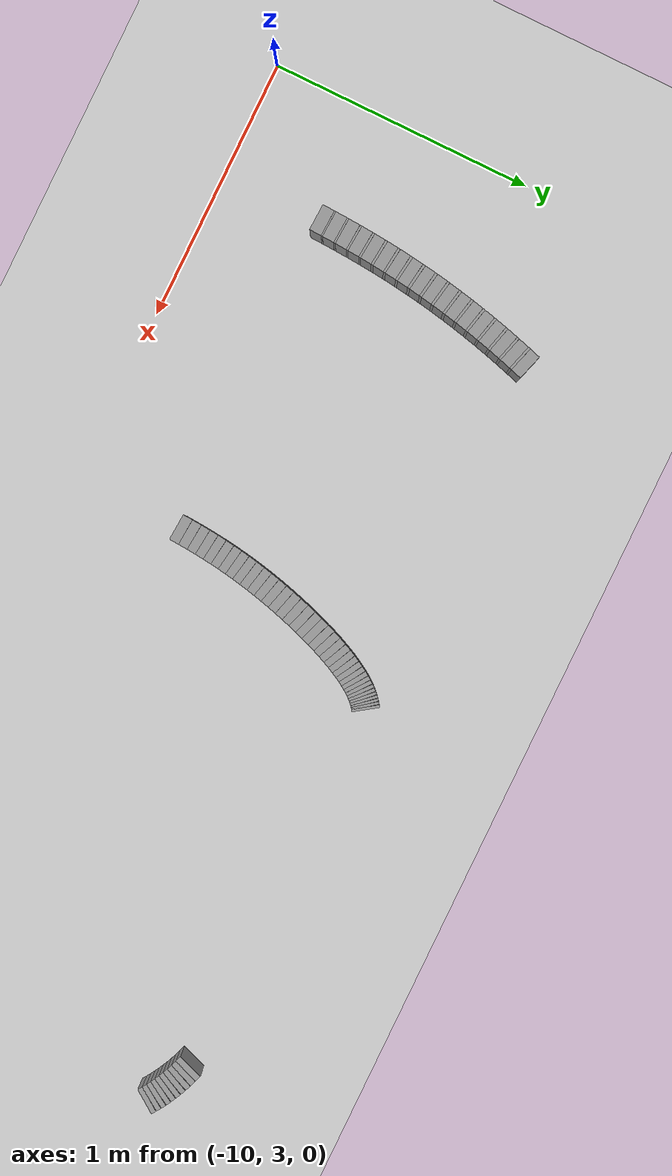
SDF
<sdf version="1.6">
 <world name="default">
  <include><uri>model://ground_plane</uri></include>
  <include><uri>model://sun</uri></include>
  <model name="wall_238_outward">
   <static>true</static>
   <link name="link">
    <collision name="collision">
     <geometry><box><size>0.01884763658179324 0.1 0.45</size></box></geometry>
    </collision>
    <visual name="visual">
     <geometry><box><size>0.01884763658179324 0.1 0.45</size></box></geometry>
     <material>
      <script><uri>file://media/materials/scripts/gazebo.material</uri><name>Gazebo/Gray</name></script>
     </material>
    </visual>
   </link>
   <pose>-6.469579434181382 4.208065182493746 0.225 0 0 2.534879595917903</pose>
  </model>
  <model name="wall_239_outward">
   <static>true</static>
   <link name="link">
    <collision name="collision">
     <geometry><box><size>0.018966233220080148 0.1 0.45</size></box></geometry>
    </collision>
    <visual name="visual">
     <geometry><box><size>0.018966233220080148 0.1 0.45</size></box></geometry>
     <material>
      <script><uri>file://media/materials/scripts/gazebo.material</uri><name>Gazebo/Gray</name></script>
     </material>
    </visual>
   </link>
   <pose>-6.485265855924101 4.218616620293574 0.225 0 0 2.56395053441448</pose>
  </model>
  <model name="wall_240_outward">
   <static>true</static>
   <link name="link">
    <collision name="collision">
     <geometry><box><size>0.01913970998064026 0.1 0.45</size></box></geometry>
    </collision>
    <visual name="visual">
     <geometry><box><size>0.01913970998064026 0.1 0.45</size></box></geometry>
     <material>
      <script><uri>file://media/materials/scripts/gazebo.material</uri><name>Gazebo/Gray</name></script>
     </material>
    </visual>
   </link>
   <pose>-6.501378069665439 4.2287819258829025 0.225 0 0 2.593429267813783</pose>
  </model>
  <model name="wall_241_outward">
   <static>true</static>
   <link name="link">
    <collision name="collision">
     <geometry><box><size>0.019387761232334117 0.1 0.45</size></box></geometry>
    </collision>
    <visual name="visual">
     <geometry><box><size>0.019387761232334117 0.1 0.45</size></box></geometry>
     <material>
      <script><uri>file://media/materials/scripts/gazebo.material</uri><name>Gazebo/Gray</name></script>
     </material>
    </visual>
   </link>
   <pose>-6.517967025851727 4.2385704240365865 0.225 0 0 2.623404136393095</pose>
  </model>
  <model name="wall_242_outward">
   <static>true</static>
   <link name="link">
    <collision name="collision">
     <geometry><box><size>0.019744496036943414 0.1 0.45</size></box></geometry>
    </collision>
    <visual name="visual">
     <geometry><box><size>0.019744496036943414 0.1 0.45</size></box></geometry>
     <material>
      <script><uri>file://media/materials/scripts/gazebo.material</uri><name>Gazebo/Gray</name></script>
     </material>
    </visual>
   </link>
   <pose>-6.535109175027507 4.247998659594815 0.225 0 0 2.653812725578215</pose>
  </model>
  <model name="wall_243_outward">
   <static>true</static>
   <link name="link">
    <collision name="collision">
     <geometry><box><size>0.020238228909970263 0.1 0.45</size></box></geometry>
    </collision>
    <visual name="visual">
     <geometry><box><size>0.020238228909970263 0.1 0.45</size></box></geometry>
     <material>
      <script><uri>file://media/materials/scripts/gazebo.material</uri><name>Gazebo/Gray</name></script>
     </material>
    </visual>
   </link>
   <pose>-6.552910836870186 4.257090451607738 0.225 0 0 2.6846073688030754</pose>
  </model>
  <model name="wall_244_outward">
   <static>true</static>
   <link name="link">
    <collision name="collision">
     <geometry><box><size>0.02090273103443384 0.1 0.45</size></box></geometry>
    </collision>
    <visual name="visual">
     <geometry><box><size>0.02090273103443384 0.1 0.45</size></box></geometry>
     <material>
      <script><uri>file://media/materials/scripts/gazebo.material</uri><name>Gazebo/Gray</name></script>
     </material>
    </visual>
   </link>
   <pose>-6.571508956346371 4.26587412709161 0.225 0 0 2.7156100211326732</pose>
  </model>
  <model name="wall_245_outward">
   <static>true</static>
   <link name="link">
    <collision name="collision">
     <geometry><box><size>0.021761641771831854 0.1 0.45</size></box></geometry>
    </collision>
    <visual name="visual">
     <geometry><box><size>0.021761641771831854 0.1 0.45</size></box></geometry>
     <material>
      <script><uri>file://media/materials/scripts/gazebo.material</uri><name>Gazebo/Gray</name></script>
     </material>
    </visual>
   </link>
   <pose>-6.591069502666788 4.274379282587556 0.225 0 0 2.746646704006796</pose>
  </model>
  <model name="wall_246_outward">
   <static>true</static>
   <link name="link">
    <collision name="collision">
     <geometry><box><size>0.02283679558823693 0.1 0.45</size></box></geometry>
    </collision>
    <visual name="visual">
     <geometry><box><size>0.02283679558823693 0.1 0.45</size></box></geometry>
     <material>
      <script><uri>file://media/materials/scripts/gazebo.material</uri><name>Gazebo/Gray</name></script>
     </material>
    </visual>
   </link>
   <pose>-6.611782346394948 4.2826324903566295 0.225 0 0 2.7774426230982483</pose>
  </model>
  <model name="wall_247_outward">
   <static>true</static>
   <link name="link">
    <collision name="collision">
     <geometry><box><size>0.024110831511824162 0.1 0.45</size></box></geometry>
    </collision>
    <visual name="visual">
     <geometry><box><size>0.024110831511824162 0.1 0.45</size></box></geometry>
     <material>
      <script><uri>file://media/materials/scripts/gazebo.material</uri><name>Gazebo/Gray</name></script>
     </material>
    </visual>
   </link>
   <pose>-6.63384176483685 4.290649703907193 0.225 0 0 2.807730488110863</pose>
  </model>
  <model name="wall_291_outward">
   <static>true</static>
   <link name="link">
    <collision name="collision">
     <geometry><box><size>0.00935795600778744 0.1 0.45</size></box></geometry>
    </collision>
    <visual name="visual">
     <geometry><box><size>0.00935795600778744 0.1 0.45</size></box></geometry>
     <material>
      <script><uri>file://media/materials/scripts/gazebo.material</uri><name>Gazebo/Gray</name></script>
     </material>
    </visual>
   </link>
   <pose>-8.055829823556746 4.297746584158386 0.225 0 0 -2.536454016841173</pose>
  </model>
  <model name="wall_292_outward">
   <static>true</static>
   <link name="link">
    <collision name="collision">
     <geometry><box><size>0.009318694593742962 0.1 0.45</size></box></geometry>
    </collision>
    <visual name="visual">
     <geometry><box><size>0.009318694593742962 0.1 0.45</size></box></geometry>
     <material>
      <script><uri>file://media/materials/scripts/gazebo.material</uri><name>Gazebo/Gray</name></script>
     </material>
    </visual>
   </link>
   <pose>-8.06338236266018 4.292258759237452 0.225 0 0 -2.4898951089158037</pose>
  </model>
  <model name="wall_293_outward">
   <static>true</static>
   <link name="link">
    <collision name="collision">
     <geometry><box><size>0.009522363915031189 0.1 0.45</size></box></geometry>
    </collision>
    <visual name="visual">
     <geometry><box><size>0.009522363915031189 0.1 0.45</size></box></geometry>
     <material>
      <script><uri>file://media/materials/scripts/gazebo.material</uri><name>Gazebo/Gray</name></script>
     </material>
    </visual>
   </link>
   <pose>-8.07073516581561 4.2863735605817315 0.225 0 0 -2.443816309355409</pose>
  </model>
  <model name="wall_294_outward">
   <static>true</static>
   <link name="link">
    <collision name="collision">
     <geometry><box><size>0.009961482229634094 0.1 0.45</size></box></geometry>
    </collision>
    <visual name="visual">
     <geometry><box><size>0.009961482229634094 0.1 0.45</size></box></geometry>
     <material>
      <script><uri>file://media/materials/scripts/gazebo.material</uri><name>Gazebo/Gray</name></script>
     </material>
    </visual>
   </link>
   <pose>-8.078051223071277 4.279944589755412 0.225 0 0 -2.398492983408994</pose>
  </model>
  <model name="wall_295_outward">
   <static>true</static>
   <link name="link">
    <collision name="collision">
     <geometry><box><size>0.010613111377030514 0.1 0.45</size></box></geometry>
    </collision>
    <visual name="visual">
     <geometry><box><size>0.010613111377030514 0.1 0.45</size></box></geometry>
     <material>
      <script><uri>file://media/materials/scripts/gazebo.material</uri><name>Gazebo/Gray</name></script>
     </material>
    </visual>
   </link>
   <pose>-8.085463567604108 4.272814815533662 0.225 0 0 -2.354157829872473</pose>
  </model>
  <model name="wall_296_outward">
   <static>true</static>
   <link name="link">
    <collision name="collision">
     <geometry><box><size>0.011475659452293799 0.1 0.45</size></box></geometry>
    </collision>
    <visual name="visual">
     <geometry><box><size>0.011475659452293799 0.1 0.45</size></box></geometry>
     <material>
      <script><uri>file://media/materials/scripts/gazebo.material</uri><name>Gazebo/Gray</name></script>
     </material>
    </visual>
   </link>
   <pose>-8.093077992668142 4.264818425575995 0.225 0 0 -2.3109908753337667</pose>
  </model>
  <model name="wall_297_outward">
   <static>true</static>
   <link name="link">
    <collision name="collision">
     <geometry><box><size>0.012538559472091811 0.1 0.45</size></box></geometry>
    </collision>
    <visual name="visual">
     <geometry><box><size>0.012538559472091811 0.1 0.45</size></box></geometry>
     <material>
      <script><uri>file://media/materials/scripts/gazebo.material</uri><name>Gazebo/Gray</name></script>
     </material>
    </visual>
   </link>
   <pose>-8.100978917008208 4.255780545546116 0.225 0 0 -2.269206144073386</pose>
  </model>
  <model name="wall_298_outward">
   <static>true</static>
   <link name="link">
    <collision name="collision">
     <geometry><box><size>0.013794129784297353 0.1 0.45</size></box></geometry>
    </collision>
    <visual name="visual">
     <geometry><box><size>0.013794129784297353 0.1 0.45</size></box></geometry>
     <material>
      <script><uri>file://media/materials/scripts/gazebo.material</uri><name>Gazebo/Gray</name></script>
     </material>
    </visual>
   </link>
   <pose>-8.109228672453659 4.245522666582809 0.225 0 0 -2.2289435915343603</pose>
  </model>
  <model name="wall_299_outward">
   <static>true</static>
   <link name="link">
    <collision name="collision">
     <geometry><box><size>0.01523684822607644 0.1 0.45</size></box></geometry>
    </collision>
    <visual name="visual">
     <geometry><box><size>0.01523684822607644 0.1 0.45</size></box></geometry>
     <material>
      <script><uri>file://media/materials/scripts/gazebo.material</uri><name>Gazebo/Gray</name></script>
     </material>
    </visual>
   </link>
   <pose>-8.11787137815352 4.233863978869257 0.225 0 0 -2.1903978370527644</pose>
  </model>
  <model name="wall_300_outward">
   <static>true</static>
   <link name="link">
    <collision name="collision">
     <geometry><box><size>0.016841199284064117 0.1 0.45</size></box></geometry>
    </collision>
    <visual name="visual">
     <geometry><box><size>0.016841199284064117 0.1 0.45</size></box></geometry>
     <material>
      <script><uri>file://media/materials/scripts/gazebo.material</uri><name>Gazebo/Gray</name></script>
     </material>
    </visual>
   </link>
   <pose>-8.12693065873489 4.220631693694722 0.225 0 0 -2.153708068805386</pose>
  </model>
  <model name="wall_301_outward">
   <static>true</static>
   <link name="link">
    <collision name="collision">
     <geometry><box><size>0.018583483754707454 0.1 0.45</size></box></geometry>
    </collision>
    <visual name="visual">
     <geometry><box><size>0.018583483754707454 0.1 0.45</size></box></geometry>
     <material>
      <script><uri>file://media/materials/scripts/gazebo.material</uri><name>Gazebo/Gray</name></script>
     </material>
    </visual>
   </link>
   <pose>-8.136408398745044 4.205671569169279 0.225 0 0 -2.119015515040928</pose>
  </model>
  <model name="wall_302_outward">
   <static>true</static>
   <link name="link">
    <collision name="collision">
     <geometry><box><size>0.02042811113721748 0.1 0.45</size></box></geometry>
    </collision>
    <visual name="visual">
     <geometry><box><size>0.02042811113721748 0.1 0.45</size></box></geometry>
     <material>
      <script><uri>file://media/materials/scripts/gazebo.material</uri><name>Gazebo/Gray</name></script>
     </material>
    </visual>
   </link>
   <pose>-8.146287309592921 4.188855432614055 0.225 0 0 -2.0864232647871797</pose>
  </model>
  <model name="wall_303_outward">
   <static>true</static>
   <link name="link">
    <collision name="collision">
     <geometry><box><size>0.022319510634768332 0.1 0.45</size></box></geometry>
    </collision>
    <visual name="visual">
     <geometry><box><size>0.022319510634768332 0.1 0.45</size></box></geometry>
     <material>
      <script><uri>file://media/materials/scripts/gazebo.material</uri><name>Gazebo/Gray</name></script>
     </material>
    </visual>
   </link>
   <pose>-8.15652857223024 4.170097742773112 0.225 0 0 -2.0560132089120726</pose>
  </model>
  <model name="wall_304_outward">
   <static>true</static>
   <link name="link">
    <collision name="collision">
     <geometry><box><size>0.024200813748564004 0.1 0.45</size></box></geometry>
    </collision>
    <visual name="visual">
     <geometry><box><size>0.024200813748564004 0.1 0.45</size></box></geometry>
     <material>
      <script><uri>file://media/materials/scripts/gazebo.material</uri><name>Gazebo/Gray</name></script>
     </material>
    </visual>
   </link>
   <pose>-8.167072607766002 4.1493673120934425 0.225 0 0 -2.027770763466546</pose>
  </model>
  <model name="wall_305_outward">
   <static>true</static>
   <link name="link">
    <collision name="collision">
     <geometry><box><size>0.026020525778646452 0.1 0.45</size></box></geometry>
    </collision>
    <visual name="visual">
     <geometry><box><size>0.026020525778646452 0.1 0.45</size></box></geometry>
     <material>
      <script><uri>file://media/materials/scripts/gazebo.material</uri><name>Gazebo/Gray</name></script>
     </material>
    </visual>
   </link>
   <pose>-8.1778456164908 4.126687348550542 0.225 0 0 -2.001666353364723</pose>
  </model>
  <model name="wall_306_outward">
   <static>true</static>
   <link name="link">
    <collision name="collision">
     <geometry><box><size>0.027719158635436877 0.1 0.45</size></box></geometry>
    </collision>
    <visual name="visual">
     <geometry><box><size>0.027719158635436877 0.1 0.45</size></box></geometry>
     <material>
      <script><uri>file://media/materials/scripts/gazebo.material</uri><name>Gazebo/Gray</name></script>
     </material>
    </visual>
   </link>
   <pose>-8.188763293461161 4.102137638930369 0.225 0 0 -1.9775913763082162</pose>
  </model>
  <model name="wall_307_outward">
   <static>true</static>
   <link name="link">
    <collision name="collision">
     <geometry><box><size>0.029254392778842446 0.1 0.45</size></box></geometry>
    </collision>
    <visual name="visual">
     <geometry><box><size>0.029254392778842446 0.1 0.45</size></box></geometry>
     <material>
      <script><uri>file://media/materials/scripts/gazebo.material</uri><name>Gazebo/Gray</name></script>
     </material>
    </visual>
   </link>
   <pose>-8.199735012166284 4.075850419645673 0.225 0 0 -1.9553943368758013</pose>
  </model>
  <model name="wall_308_outward">
   <static>true</static>
   <link name="link">
    <collision name="collision">
     <geometry><box><size>0.03058778320624253 0.1 0.45</size></box></geometry>
    </collision>
    <visual name="visual">
     <geometry><box><size>0.03058778320624253 0.1 0.45</size></box></geometry>
     <material>
      <script><uri>file://media/materials/scripts/gazebo.material</uri><name>Gazebo/Gray</name></script>
     </material>
    </visual>
   </link>
   <pose>-8.210669152060909 4.0480004276438635 0.225 0 0 -1.9348913441226534</pose>
  </model>
  <model name="wall_309_outward">
   <static>true</static>
   <link name="link">
    <collision name="collision">
     <geometry><box><size>0.031692305868867364 0.1 0.45</size></box></geometry>
    </collision>
    <visual name="visual">
     <geometry><box><size>0.031692305868867364 0.1 0.45</size></box></geometry>
     <material>
      <script><uri>file://media/materials/scripts/gazebo.material</uri><name>Gazebo/Gray</name></script>
     </material>
    </visual>
   </link>
   <pose>-8.221475435867664 4.018797023166737 0.225 0 0 -1.9158603604779794</pose>
  </model>
  <model name="wall_310_outward">
   <static>true</static>
   <link name="link">
    <collision name="collision">
     <geometry><box><size>0.03255767751976297 0.1 0.45</size></box></geometry>
    </collision>
    <visual name="visual">
     <geometry><box><size>0.03255767751976297 0.1 0.45</size></box></geometry>
     <material>
      <script><uri>file://media/materials/scripts/gazebo.material</uri><name>Gazebo/Gray</name></script>
     </material>
    </visual>
   </link>
   <pose>-8.232068381802605 3.988470090414306 0.225 0 0 -1.8980594151701742</pose>
  </model>
  <model name="wall_311_outward">
   <static>true</static>
   <link name="link">
    <collision name="collision">
     <geometry><box><size>0.03318258084422679 0.1 0.45</size></box></geometry>
    </collision>
    <visual name="visual">
     <geometry><box><size>0.03318258084422679 0.1 0.45</size></box></geometry>
     <material>
      <script><uri>file://media/materials/scripts/gazebo.material</uri><name>Gazebo/Gray</name></script>
     </material>
    </visual>
   </link>
   <pose>-8.242369759869721 3.95725710112537 0.225 0 0 -1.881251211462449</pose>
  </model>
  <model name="wall_312_outward">
   <static>true</static>
   <link name="link">
    <collision name="collision">
     <geometry><box><size>0.03356654691500567 0.1 0.45</size></box></geometry>
    </collision>
    <visual name="visual">
     <geometry><box><size>0.03356654691500567 0.1 0.45</size></box></geometry>
     <material>
      <script><uri>file://media/materials/scripts/gazebo.material</uri><name>Gazebo/Gray</name></script>
     </material>
    </visual>
   </link>
   <pose>-8.25230806199073 3.9253977254468704 0.225 0 0 -1.8651881246786572</pose>
  </model>
  <model name="wall_313_outward">
   <static>true</static>
   <link name="link">
    <collision name="collision">
     <geometry><box><size>0.03372801636154137 0.1 0.45</size></box></geometry>
    </collision>
    <visual name="visual">
     <geometry><box><size>0.03372801636154137 0.1 0.45</size></box></geometry>
     <material>
      <script><uri>file://media/materials/scripts/gazebo.material</uri><name>Gazebo/Gray</name></script>
     </material>
    </visual>
   </link>
   <pose>-8.26181902735952 3.8931237052696854 0.225 0 0 -1.8496058664695125</pose>
  </model>
  <model name="wall_314_outward">
   <static>true</static>
   <link name="link">
    <collision name="collision">
     <geometry><box><size>0.0337068066468165 0.1 0.45</size></box></geometry>
    </collision>
    <visual name="visual">
     <geometry><box><size>0.0337068066468165 0.1 0.45</size></box></geometry>
     <material>
      <script><uri>file://media/materials/scripts/gazebo.material</uri><name>Gazebo/Gray</name></script>
     </material>
    </visual>
   </link>
   <pose>-8.27084956437189 3.8606391478443434 0.225 0 0 -1.8342785378152882</pose>
  </model>
  <model name="wall_315_outward">
   <static>true</static>
   <link name="link">
    <collision name="collision">
     <geometry><box><size>0.03353349995026042 0.1 0.45</size></box></geometry>
    </collision>
    <visual name="visual">
     <geometry><box><size>0.03353349995026042 0.1 0.45</size></box></geometry>
     <material>
      <script><uri>file://media/materials/scripts/gazebo.material</uri><name>Gazebo/Gray</name></script>
     </material>
    </visual>
   </link>
   <pose>-8.279358303510865 3.828114536927541 0.225 0 0 -1.819024442488903</pose>
  </model>
  <model name="wall_316_outward">
   <static>true</static>
   <link name="link">
    <collision name="collision">
     <geometry><box><size>0.033246819496352845 0.1 0.45</size></box></geometry>
    </collision>
    <visual name="visual">
     <geometry><box><size>0.033246819496352845 0.1 0.45</size></box></geometry>
     <material>
      <script><uri>file://media/materials/scripts/gazebo.material</uri><name>Gazebo/Gray</name></script>
     </material>
    </visual>
   </link>
   <pose>-8.287313750819019 3.7956869588692856 0.225 0 0 -1.803658765551987</pose>
  </model>
  <model name="wall_317_outward">
   <static>true</static>
   <link name="link">
    <collision name="collision">
     <geometry><box><size>0.0329026837775365 0.1 0.45</size></box></geometry>
    </collision>
    <visual name="visual">
     <geometry><box><size>0.0329026837775365 0.1 0.45</size></box></geometry>
     <material>
      <script><uri>file://media/materials/scripts/gazebo.material</uri><name>Gazebo/Gray</name></script>
     </material>
    </visual>
   </link>
   <pose>-8.294695989210592 3.763447616821616 0.225 0 0 -1.7880559061284098</pose>
  </model>
  <model name="wall_318_outward">
   <static>true</static>
   <link name="link">
    <collision name="collision">
     <geometry><box><size>0.03256332563776195 0.1 0.45</size></box></geometry>
    </collision>
    <visual name="visual">
     <geometry><box><size>0.03256332563776195 0.1 0.45</size></box></geometry>
     <material>
      <script><uri>file://media/materials/scripts/gazebo.material</uri><name>Gazebo/Gray</name></script>
     </material>
    </visual>
   </link>
   <pose>-8.301498374585904 3.731430287699556 0.225 0 0 -1.7721475443656516</pose>
  </model>
  <model name="wall_319_outward">
   <static>true</static>
   <link name="link">
    <collision name="collision">
     <geometry><box><size>0.03227823129677392 0.1 0.45</size></box></geometry>
    </collision>
    <visual name="visual">
     <geometry><box><size>0.03227823129677392 0.1 0.45</size></box></geometry>
     <material>
      <script><uri>file://media/materials/scripts/gazebo.material</uri><name>Gazebo/Gray</name></script>
     </material>
    </visual>
   </link>
   <pose>-8.307725595654269 3.699614260921426 0.225 0 0 -1.7559388590213014</pose>
  </model>
  <model name="wall_320_outward">
   <static>true</static>
   <link name="link">
    <collision name="collision">
     <geometry><box><size>0.03210512559910534 0.1 0.45</size></box></geometry>
    </collision>
    <visual name="visual">
     <geometry><box><size>0.03210512559910534 0.1 0.45</size></box></geometry>
     <material>
      <script><uri>file://media/materials/scripts/gazebo.material</uri><name>Gazebo/Gray</name></script>
     </material>
    </visual>
   </link>
   <pose>-8.313391320549638 3.6679261968212 0.225 0 0 -1.7394640337840592</pose>
  </model>
  <model name="wall_321_outward">
   <static>true</static>
   <link name="link">
    <collision name="collision">
     <geometry><box><size>0.03210272218789716 0.1 0.45</size></box></geometry>
    </collision>
    <visual name="visual">
     <geometry><box><size>0.03210272218789716 0.1 0.45</size></box></geometry>
     <material>
      <script><uri>file://media/materials/scripts/gazebo.material</uri><name>Gazebo/Gray</name></script>
     </material>
    </visual>
   </link>
   <pose>-8.318517304777412 3.6362352661994093 0.225 0 0 -1.722848760258676</pose>
  </model>
  <model name="wall_322_outward">
   <static>true</static>
   <link name="link">
    <collision name="collision">
     <geometry><box><size>0.03231769342851074 0.1 0.45</size></box></geometry>
    </collision>
    <visual name="visual">
     <geometry><box><size>0.03231769342851074 0.1 0.45</size></box></geometry>
     <material>
      <script><uri>file://media/materials/scripts/gazebo.material</uri><name>Gazebo/Gray</name></script>
     </material>
    </visual>
   </link>
   <pose>-8.323130945919372 3.6043583073941448 0.225 0 0 -1.7062686283303088</pose>
  </model>
  <model name="wall_323_outward">
   <static>true</static>
   <link name="link">
    <collision name="collision">
     <geometry><box><size>0.03278220129205927 0.1 0.45</size></box></geometry>
    </collision>
    <visual name="visual">
     <geometry><box><size>0.03278220129205927 0.1 0.45</size></box></geometry>
     <material>
      <script><uri>file://media/materials/scripts/gazebo.material</uri><name>Gazebo/Gray</name></script>
     </material>
    </visual>
   </link>
   <pose>-8.327261798339062 3.5720726354323413 0.225 0 0 -1.689951497988756</pose>
  </model>
  <model name="wall_324_outward">
   <static>true</static>
   <link name="link">
    <collision name="collision">
     <geometry><box><size>0.03352160987014781 0.1 0.45</size></box></geometry>
    </collision>
    <visual name="visual">
     <geometry><box><size>0.03352160987014781 0.1 0.45</size></box></geometry>
     <material>
      <script><uri>file://media/materials/scripts/gazebo.material</uri><name>Gazebo/Gray</name></script>
     </material>
    </visual>
   </link>
   <pose>-8.330939201335113 3.539126363795548 0.225 0 0 -1.674133720230564</pose>
  </model>
  <model name="wall_325_outward">
   <static>true</static>
   <link name="link">
    <collision name="collision">
     <geometry><box><size>0.03454187752987806 0.1 0.45</size></box></geometry>
    </collision>
    <visual name="visual">
     <geometry><box><size>0.03454187752987806 0.1 0.45</size></box></geometry>
     <material>
      <script><uri>file://media/materials/scripts/gazebo.material</uri><name>Gazebo/Gray</name></script>
     </material>
    </visual>
   </link>
   <pose>-8.334191246907992 3.5052513234803717 0.225 0 0 -1.659100145829696</pose>
  </model>
  <model name="wall_326_outward">
   <static>true</static>
   <link name="link">
    <collision name="collision">
     <geometry><box><size>0.03581759543992426 0.1 0.45</size></box></geometry>
    </collision>
    <visual name="visual">
     <geometry><box><size>0.03581759543992426 0.1 0.45</size></box></geometry>
     <material>
      <script><uri>file://media/materials/scripts/gazebo.material</uri><name>Gazebo/Gray</name></script>
     </material>
    </visual>
   </link>
   <pose>-8.337043566446745 3.4701882747602637 0.225 0 0 -1.6450857545777413</pose>
  </model>
  <model name="wall_327_outward">
   <static>true</static>
   <link name="link">
    <collision name="collision">
     <geometry><box><size>0.037319829877882654 0.1 0.45</size></box></geometry>
    </collision>
    <visual name="visual">
     <geometry><box><size>0.037319829877882654 0.1 0.45</size></box></geometry>
     <material>
      <script><uri>file://media/materials/scripts/gazebo.material</uri><name>Gazebo/Gray</name></script>
     </material>
    </visual>
   </link>
   <pose>-8.339519546887011 3.4337042294277706 0.225 0 0 -1.6322913887581894</pose>
  </model>
  <model name="wall_341_inward">
   <static>true</static>
   <link name="link">
    <collision name="collision">
     <geometry><box><size>0.04306034862086962 0.1 0.45</size></box></geometry>
    </collision>
    <visual name="visual">
     <geometry><box><size>0.04306034862086962 0.1 0.45</size></box></geometry>
     <material>
      <script><uri>file://media/materials/scripts/gazebo.material</uri><name>Gazebo/Gray</name></script>
     </material>
    </visual>
   </link>
   <pose>-9.400661685976068 4.273656191937354 0.225 0 0 -1.8651881246786348</pose>
  </model>
  <model name="wall_342_inward">
   <static>true</static>
   <link name="link">
    <collision name="collision">
     <geometry><box><size>0.009349260338814822 0.1 0.45</size></box></geometry>
    </collision>
    <visual name="visual">
     <geometry><box><size>0.009349260338814822 0.1 0.45</size></box></geometry>
     <material>
      <script><uri>file://media/materials/scripts/gazebo.material</uri><name>Gazebo/Gray</name></script>
     </material>
    </visual>
   </link>
   <pose>-9.408230321555418 4.248568317894976 0.225 0 0 -1.8573969955740903</pose>
  </model>
  <model name="wall_343_inward">
   <static>true</static>
   <link name="link">
    <collision name="collision">
     <geometry><box><size>0.04300107703202087 0.1 0.45</size></box></geometry>
    </collision>
    <visual name="visual">
     <geometry><box><size>0.04300107703202087 0.1 0.45</size></box></geometry>
     <material>
      <script><uri>file://media/materials/scripts/gazebo.material</uri><name>Gazebo/Gray</name></script>
     </material>
    </visual>
   </link>
   <pose>-9.41546900000477 4.223414095802079 0.225 0 0 -1.8496058664695143</pose>
  </model>
  <model name="wall_344_inward">
   <static>true</static>
   <link name="link">
    <collision name="collision">
     <geometry><box><size>0.009196307172708758 0.1 0.45</size></box></geometry>
    </collision>
    <visual name="visual">
     <geometry><box><size>0.009196307172708758 0.1 0.45</size></box></geometry>
     <material>
      <script><uri>file://media/materials/scripts/gazebo.material</uri><name>Gazebo/Gray</name></script>
     </material>
    </visual>
   </link>
   <pose>-9.422617741664059 4.1983136691963985 0.225 0 0 -1.8419422021424963</pose>
  </model>
  <model name="wall_345_inward">
   <static>true</static>
   <link name="link">
    <collision name="collision">
     <geometry><box><size>0.04288141260102675 0.1 0.45</size></box></geometry>
    </collision>
    <visual name="visual">
     <geometry><box><size>0.04288141260102675 0.1 0.45</size></box></geometry>
     <material>
      <script><uri>file://media/materials/scripts/gazebo.material</uri><name>Gazebo/Gray</name></script>
     </material>
    </visual>
   </link>
   <pose>-9.429433397740949 4.173182746685438 0.225 0 0 -1.8342785378152957</pose>
  </model>
  <model name="wall_346_inward">
   <static>true</static>
   <link name="link">
    <collision name="collision">
     <geometry><box><size>0.0091523684601939 0.1 0.45</size></box></geometry>
    </collision>
    <visual name="visual">
     <geometry><box><size>0.0091523684601939 0.1 0.45</size></box></geometry>
     <material>
      <script><uri>file://media/materials/scripts/gazebo.material</uri><name>Gazebo/Gray</name></script>
     </material>
    </visual>
   </link>
   <pose>-9.436175612366679 4.14805476572349 0.225 0 0 -1.8266514901519368</pose>
  </model>
  <model name="wall_347_inward">
   <static>true</static>
   <link name="link">
    <collision name="collision">
     <geometry><box><size>0.042719611066977886 0.1 0.45</size></box></geometry>
    </collision>
    <visual name="visual">
     <geometry><box><size>0.042719611066977886 0.1 0.45</size></box></geometry>
     <material>
      <script><uri>file://media/materials/scripts/gazebo.material</uri><name>Gazebo/Gray</name></script>
     </material>
    </visual>
   </link>
   <pose>-9.442581541896491 4.122922437024906 0.225 0 0 -1.8190244424888984</pose>
  </model>
  <model name="wall_348_inward">
   <static>true</static>
   <link name="link">
    <collision name="collision">
     <geometry><box><size>0.009219315464960427 0.1 0.45</size></box></geometry>
    </collision>
    <visual name="visual">
     <geometry><box><size>0.009219315464960427 0.1 0.45</size></box></geometry>
     <material>
      <script><uri>file://media/materials/scripts/gazebo.material</uri><name>Gazebo/Gray</name></script>
     </material>
    </visual>
   </link>
   <pose>-9.448927532633762 4.097740387621994 0.225 0 0 -1.8113416040205441</pose>
  </model>
  <model name="wall_349_inward">
   <static>true</static>
   <link name="link">
    <collision name="collision">
     <geometry><box><size>0.04253756606898342 0.1 0.45</size></box></geometry>
    </collision>
    <visual name="visual">
     <geometry><box><size>0.04253756606898342 0.1 0.45</size></box></geometry>
     <material>
      <script><uri>file://media/materials/scripts/gazebo.material</uri><name>Gazebo/Gray</name></script>
     </material>
    </visual>
   </link>
   <pose>-9.454933763641776 4.0725687150788366 0.225 0 0 -1.8036587655519851</pose>
  </model>
  <model name="wall_350_inward">
   <static>true</static>
   <link name="link">
    <collision name="collision">
     <geometry><box><size>0.009361620691825955 0.1 0.45</size></box></geometry>
    </collision>
    <visual name="visual">
     <geometry><box><size>0.009361620691825955 0.1 0.45</size></box></geometry>
     <material>
      <script><uri>file://media/materials/scripts/gazebo.material</uri><name>Gazebo/Gray</name></script>
     </material>
    </visual>
   </link>
   <pose>-9.460886422504512 4.04731121738117 0.225 0 0 -1.795857335840283</pose>
  </model>
  <model name="wall_351_inward">
   <static>true</static>
   <link name="link">
    <collision name="collision">
     <geometry><box><size>0.042356245751415805 0.1 0.45</size></box></geometry>
    </collision>
    <visual name="visual">
     <geometry><box><size>0.042356245751415805 0.1 0.45</size></box></geometry>
     <material>
      <script><uri>file://media/materials/scripts/gazebo.material</uri><name>Gazebo/Gray</name></script>
     </material>
    </visual>
   </link>
   <pose>-9.466496057807039 4.022068190901845 0.225 0 0 -1.7880559061284214</pose>
  </model>
  <model name="wall_352_inward">
   <static>true</static>
   <link name="link">
    <collision name="collision">
     <geometry><box><size>0.009544916407370511 0.1 0.45</size></box></geometry>
    </collision>
    <visual name="visual">
     <geometry><box><size>0.009544916407370511 0.1 0.45</size></box></geometry>
     <material>
      <script><uri>file://media/materials/scripts/gazebo.material</uri><name>Gazebo/Gray</name></script>
     </material>
    </visual>
   </link>
   <pose>-9.47205271995886 3.9967196254706963 0.225 0 0 -1.780101725246978</pose>
  </model>
  <model name="wall_353_inward">
   <static>true</static>
   <link name="link">
    <collision name="collision">
     <geometry><box><size>0.04219864688509849 0.1 0.45</size></box></geometry>
    </collision>
    <visual name="visual">
     <geometry><box><size>0.04219864688509849 0.1 0.45</size></box></geometry>
     <material>
      <script><uri>file://media/materials/scripts/gazebo.material</uri><name>Gazebo/Gray</name></script>
     </material>
    </visual>
   </link>
   <pose>-9.477264069860551 3.9713782650716483 0.225 0 0 -1.7721475443656636</pose>
  </model>
  <model name="wall_354_inward">
   <static>true</static>
   <link name="link">
    <collision name="collision">
     <geometry><box><size>0.00972510474774256 0.1 0.45</size></box></geometry>
    </collision>
    <visual name="visual">
     <geometry><box><size>0.00972510474774256 0.1 0.45</size></box></geometry>
     <material>
      <script><uri>file://media/materials/scripts/gazebo.material</uri><name>Gazebo/Gray</name></script>
     </material>
    </visual>
   </link>
   <pose>-9.482417631353645 3.9459331661073946 0.225 0 0 -1.7640432016933931</pose>
  </model>
  <model name="wall_355_inward">
   <static>true</static>
   <link name="link">
    <collision name="collision">
     <geometry><box><size>0.0420835027262776 0.1 0.45</size></box></geometry>
    </collision>
    <visual name="visual">
     <geometry><box><size>0.0420835027262776 0.1 0.45</size></box></geometry>
     <material>
      <script><uri>file://media/materials/scripts/gazebo.material</uri><name>Gazebo/Gray</name></script>
     </material>
    </visual>
   </link>
   <pose>-9.487224971868773 3.92047897766788 0.225 0 0 -1.7559388590212663</pose>
  </model>
  <model name="wall_356_inward">
   <static>true</static>
   <link name="link">
    <collision name="collision">
     <geometry><box><size>0.009884783352829336 0.1 0.45</size></box></geometry>
    </collision>
    <visual name="visual">
     <geometry><box><size>0.009884783352829336 0.1 0.45</size></box></geometry>
     <material>
      <script><uri>file://media/materials/scripts/gazebo.material</uri><name>Gazebo/Gray</name></script>
     </material>
    </visual>
   </link>
   <pose>-9.491968258080902 3.8949315733229093 0.225 0 0 -1.7477014464027185</pose>
  </model>
  <model name="wall_357_inward">
   <static>true</static>
   <link name="link">
    <collision name="collision">
     <geometry><box><size>0.04203238169728848 0.1 0.45</size></box></geometry>
    </collision>
    <visual name="visual">
     <geometry><box><size>0.04203238169728848 0.1 0.45</size></box></geometry>
     <material>
      <script><uri>file://media/materials/scripts/gazebo.material</uri><name>Gazebo/Gray</name></script>
     </material>
    </visual>
   </link>
   <pose>-9.496366008445616 3.869348361046737 0.225 0 0 -1.739464033784064</pose>
  </model>
  <model name="wall_358_inward">
   <static>true</static>
   <link name="link">
    <collision name="collision">
     <geometry><box><size>0.009969049442261717 0.1 0.45</size></box></geometry>
    </collision>
    <visual name="visual">
     <geometry><box><size>0.009969049442261717 0.1 0.45</size></box></geometry>
     <material>
      <script><uri>file://media/materials/scripts/gazebo.material</uri><name>Gazebo/Gray</name></script>
     </material>
    </visual>
   </link>
   <pose>-9.500689875075407 3.8437098322737766 0.225 0 0 -1.7311563970214299</pose>
  </model>
  <model name="wall_359_inward">
   <static>true</static>
   <link name="link">
    <collision name="collision">
     <geometry><box><size>0.04206157245093991 0.1 0.45</size></box></geometry>
    </collision>
    <visual name="visual">
     <geometry><box><size>0.04206157245093991 0.1 0.45</size></box></geometry>
     <material>
      <script><uri>file://media/materials/scripts/gazebo.material</uri><name>Gazebo/Gray</name></script>
     </material>
    </visual>
   </link>
   <pose>-9.50467124678753 3.818001120753145 0.225 0 0 -1.7228487602587064</pose>
  </model>
  <model name="wall_360_inward">
   <static>true</static>
   <link name="link">
    <collision name="collision">
     <geometry><box><size>0.009947965210177892 0.1 0.45</size></box></geometry>
    </collision>
    <visual name="visual">
     <geometry><box><size>0.009947965210177892 0.1 0.45</size></box></geometry>
     <material>
      <script><uri>file://media/materials/scripts/gazebo.material</uri><name>Gazebo/Gray</name></script>
     </material>
    </visual>
   </link>
   <pose>-9.508569332078824 3.7922903108881565 0.225 0 0 -1.7145586942944955</pose>
  </model>
  <model name="wall_361_inward">
   <static>true</static>
   <link name="link">
    <collision name="collision">
     <geometry><box><size>0.04218709467316024 0.1 0.45</size></box></geometry>
    </collision>
    <visual name="visual">
     <geometry><box><size>0.04218709467316024 0.1 0.45</size></box></geometry>
     <material>
      <script><uri>file://media/materials/scripts/gazebo.material</uri><name>Gazebo/Gray</name></script>
     </material>
    </visual>
   </link>
   <pose>-9.512130801649056 3.766467359057912 0.225 0 0 -1.706268628330266</pose>
  </model>
  <model name="wall_362_inward">
   <static>true</static>
   <link name="link">
    <collision name="collision">
     <geometry><box><size>0.009790169594882707 0.1 0.45</size></box></geometry>
    </collision>
    <visual name="visual">
     <geometry><box><size>0.009790169594882707 0.1 0.45</size></box></geometry>
     <material>
      <script><uri>file://media/materials/scripts/gazebo.material</uri><name>Gazebo/Gray</name></script>
     </material>
    </visual>
   </link>
   <pose>-9.515601189612905 3.740711611451654 0.225 0 0 -1.698110063159479</pose>
  </model>
  <model name="wall_363_inward">
   <static>true</static>
   <link name="link">
    <collision name="collision">
     <geometry><box><size>0.042422881278761745 0.1 0.45</size></box></geometry>
    </collision>
    <visual name="visual">
     <geometry><box><size>0.042422881278761745 0.1 0.45</size></box></geometry>
     <material>
      <script><uri>file://media/materials/scripts/gazebo.material</uri><name>Gazebo/Gray</name></script>
     </material>
    </visual>
   </link>
   <pose>-9.518744195236403 3.714795105614623 0.225 0 0 -1.6899514979887542</pose>
  </model>
  <model name="wall_364_inward">
   <static>true</static>
   <link name="link">
    <collision name="collision">
     <geometry><box><size>0.009490567714171458 0.1 0.45</size></box></geometry>
    </collision>
    <visual name="visual">
     <geometry><box><size>0.009490567714171458 0.1 0.45</size></box></geometry>
     <material>
      <script><uri>file://media/materials/scripts/gazebo.material</uri><name>Gazebo/Gray</name></script>
     </material>
    </visual>
   </link>
   <pose>-9.521792478557163 3.689018115498725 0.225 0 0 -1.6820426091096876</pose>
  </model>
  <model name="wall_365_inward">
   <static>true</static>
   <link name="link">
    <collision name="collision">
     <geometry><box><size>0.04277719940611681 0.1 0.45</size></box></geometry>
    </collision>
    <visual name="visual">
     <geometry><box><size>0.04277719940611681 0.1 0.45</size></box></geometry>
     <material>
      <script><uri>file://media/materials/scripts/gazebo.material</uri><name>Gazebo/Gray</name></script>
     </material>
    </visual>
   </link>
   <pose>-9.524525596090683 3.6630276635989922 0.225 0 0 -1.674133720230605</pose>
  </model>
  <model name="wall_366_inward">
   <static>true</static>
   <link name="link">
    <collision name="collision">
     <geometry><box><size>0.009020059697950694 0.1 0.45</size></box></geometry>
    </collision>
    <visual name="visual">
     <geometry><box><size>0.009020059697950694 0.1 0.45</size></box></geometry>
     <material>
      <script><uri>file://media/materials/scripts/gazebo.material</uri><name>Gazebo/Gray</name></script>
     </material>
    </visual>
   </link>
   <pose>-9.527163399399601 3.6372638215712803 0.225 0 0 -1.6666169330301392</pose>
  </model>
  <model name="wall_367_inward">
   <static>true</static>
   <link name="link">
    <collision name="collision">
     <geometry><box><size>0.0432564209836476 0.1 0.45</size></box></geometry>
    </collision>
    <visual name="visual">
     <geometry><box><size>0.0432564209836476 0.1 0.45</size></box></geometry>
     <material>
      <script><uri>file://media/materials/scripts/gazebo.material</uri><name>Gazebo/Gray</name></script>
     </material>
    </visual>
   </link>
   <pose>-9.529502264706094 3.611230538916482 0.225 0 0 -1.6591001458296912</pose>
  </model>
  <model name="wall_368_inward">
   <static>true</static>
   <link name="link">
    <collision name="collision">
     <geometry><box><size>0.008408565939578339 0.1 0.45</size></box></geometry>
    </collision>
    <visual name="visual">
     <geometry><box><size>0.008408565939578339 0.1 0.45</size></box></geometry>
     <material>
      <script><uri>file://media/materials/scripts/gazebo.material</uri><name>Gazebo/Gray</name></script>
     </material>
    </visual>
   </link>
   <pose>-9.53175105486408 3.5854962000577086 0.225 0 0 -1.6520929502037494</pose>
  </model>
  <model name="wall_369_inward">
   <static>true</static>
   <link name="link">
    <collision name="collision">
     <geometry><box><size>0.04386034373489591 0.1 0.45</size></box></geometry>
    </collision>
    <visual name="visual">
     <geometry><box><size>0.04386034373489591 0.1 0.45</size></box></geometry>
     <material>
      <script><uri>file://media/materials/scripts/gazebo.material</uri><name>Gazebo/Gray</name></script>
     </material>
    </visual>
   </link>
   <pose>-9.533720154284296 3.5594361185151135 0.225 0 0 -1.6450857545777273</pose>
  </model>
  <model name="wall_370_inward">
   <static>true</static>
   <link name="link">
    <collision name="collision">
     <geometry><box><size>0.007676567132221759 0.1 0.45</size></box></geometry>
    </collision>
    <visual name="visual">
     <geometry><box><size>0.007676567132221759 0.1 0.45</size></box></geometry>
     <material>
      <script><uri>file://media/materials/scripts/gazebo.material</uri><name>Gazebo/Gray</name></script>
     </material>
    </visual>
   </link>
   <pose>-9.535608225607032 3.5337369932891085 0.225 0 0 -1.6386885716679258</pose>
  </model>
  <model name="wall_371_inward">
   <static>true</static>
   <link name="link">
    <collision name="collision">
     <geometry><box><size>0.04458625575486833 0.1 0.45</size></box></geometry>
    </collision>
    <visual name="visual">
     <geometry><box><size>0.04458625575486833 0.1 0.45</size></box></geometry>
     <material>
      <script><uri>file://media/materials/scripts/gazebo.material</uri><name>Gazebo/Gray</name></script>
     </material>
    </visual>
   </link>
   <pose>-9.537238668539445 3.5076565634971324 0.225 0 0 -1.6322913887582076</pose>
  </model>
  <model name="wall_372_inward">
   <static>true</static>
   <link name="link">
    <collision name="collision">
     <geometry><box><size>0.006856015640483743 0.1 0.45</size></box></geometry>
    </collision>
    <visual name="visual">
     <geometry><box><size>0.006856015640483743 0.1 0.45</size></box></geometry>
     <material>
      <script><uri>file://media/materials/scripts/gazebo.material</uri><name>Gazebo/Gray</name></script>
     </material>
    </visual>
   </link>
   <pose>-9.538799842829341 3.4819828987444197 0.225 0 0 -1.626578011307798</pose>
  </model>
  <model name="wall_373_inward">
   <static>true</static>
   <link name="link">
    <collision name="collision">
     <geometry><box><size>0.04542338016577034 0.1 0.45</size></box></geometry>
    </collision>
    <visual name="visual">
     <geometry><box><size>0.04542338016577034 0.1 0.45</size></box></geometry>
     <material>
      <script><uri>file://media/materials/scripts/gazebo.material</uri><name>Gazebo/Gray</name></script>
     </material>
    </visual>
   </link>
   <pose>-9.540127624559359 3.4558769940344254 0.225 0 0 -1.6208646338575143</pose>
  </model>
  <model name="wall_374_inward">
   <static>true</static>
   <link name="link">
    <collision name="collision">
     <geometry><box><size>0.005986681986596876 0.1 0.45</size></box></geometry>
    </collision>
    <visual name="visual">
     <geometry><box><size>0.005986681986596876 0.1 0.45</size></box></geometry>
     <material>
      <script><uri>file://media/materials/scripts/gazebo.material</uri><name>Gazebo/Gray</name></script>
     </material>
    </visual>
   </link>
   <pose>-9.541399177662282 3.430203465191192 0.225 0 0 -1.6158757115068352</pose>
  </model>
  <model name="wall_375_inward">
   <static>true</static>
   <link name="link">
    <collision name="collision">
     <geometry><box><size>0.046358866792949656 0.1 0.45</size></box></geometry>
    </collision>
    <visual name="visual">
     <geometry><box><size>0.046358866792949656 0.1 0.45</size></box></geometry>
     <material>
      <script><uri>file://media/materials/scripts/gazebo.material</uri><name>Gazebo/Gray</name></script>
     </material>
    </visual>
   </link>
   <pose>-9.542463095228314 3.4040523567681604 0.225 0 0 -1.610886789156233</pose>
  </model>
 </world>
</sdf>
